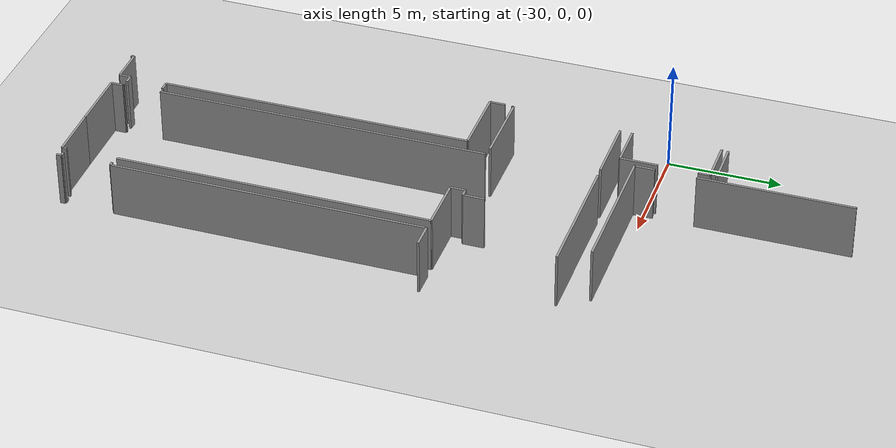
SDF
<sdf version="1.6">
 <world name="default">
  <model name="ground_plane">
   <static>1</static>
   <link name="link">
    <collision name="collision">
     <geometry><plane><normal>0 0 1</normal><size>100 100</size></plane></geometry>
     <surface><friction><ode><mu>100</mu><mu2>50</mu2></ode></friction></surface>
    </collision>
    <visual name="visual">
     <cast_shadows>0</cast_shadows>
     <geometry><plane><normal>0 0 1</normal><size>100 100</size></plane></geometry>
     <material>
      <script><uri>file://media/materials/scripts/gazebo.material</uri><name>Gazebo/Grey</name></script>
     </material>
    </visual>
   </link>
  </model>
  <model name="0510032194_A_40_1_102">
   <static>1</static>
   <link name="Wall_305">
    <collision name="Wall_305_Collision">
     <geometry><box><size>2.77687379233 0.1 2.5</size></box></geometry>
     <pose>1.38843689617 0 1.25 0 0 0</pose>
    </collision>
    <visual name="Wall_305_Visual">
     <pose>1.38843689617 0 1.25 0 0 0</pose>
     <geometry><box><size>2.77687379233 0.1 2.5</size></box></geometry>
     <material>
      <script><uri>file://media/materials/scripts/gazebo.material</uri><name>Gazebo/Grey</name></script>
      <ambient>1 1 1 1</ambient>
     </material>
    </visual>
    <pose>45.6802349232 -47.6613190278 0 0 0 3.14159265359</pose>
   </link>
   <link name="Wall_306">
    <collision name="Wall_306_Collision">
     <geometry><box><size>0.556035797824 0.1 2.5</size></box></geometry>
     <pose>0.278017898912 0 1.25 0 0 0</pose>
    </collision>
    <visual name="Wall_306_Visual">
     <pose>0.278017898912 0 1.25 0 0 0</pose>
     <geometry><box><size>0.556035797824 0.1 2.5</size></box></geometry>
     <material>
      <script><uri>file://media/materials/scripts/gazebo.material</uri><name>Gazebo/Grey</name></script>
      <ambient>1 1 1 1</ambient>
     </material>
    </visual>
    <pose>42.9033611309 -47.6613190278 0 0 0 1.57079632679</pose>
   </link>
   <link name="Wall_307">
    <collision name="Wall_307_Collision">
     <geometry><box><size>0.0436031729889 0.1 2.5</size></box></geometry>
     <pose>0.0218015864945 0 1.25 0 0 0</pose>
    </collision>
    <visual name="Wall_307_Visual">
     <pose>0.0218015864945 0 1.25 0 0 0</pose>
     <geometry><box><size>0.0436031729889 0.1 2.5</size></box></geometry>
     <material>
      <script><uri>file://media/materials/scripts/gazebo.material</uri><name>Gazebo/Grey</name></script>
      <ambient>1 1 1 1</ambient>
     </material>
    </visual>
    <pose>42.9033611309 -47.1052832299 0 0 0 3.14159265359</pose>
   </link>
   <link name="Wall_308">
    <collision name="Wall_308_Collision">
     <geometry><box><size>14.8300366114 0.1 2.5</size></box></geometry>
     <pose>7.41501830571 0 1.25 0 0 0</pose>
    </collision>
    <visual name="Wall_308_Visual">
     <pose>7.41501830571 0 1.25 0 0 0</pose>
     <geometry><box><size>14.8300366114 0.1 2.5</size></box></geometry>
     <material>
      <script><uri>file://media/materials/scripts/gazebo.material</uri><name>Gazebo/Grey</name></script>
      <ambient>1 1 1 1</ambient>
     </material>
    </visual>
    <pose>42.8597579579 -45.3678938269 0 0 0 1.57079632679</pose>
   </link>
   <link name="Wall_309">
    <collision name="Wall_309_Collision">
     <geometry><box><size>5.93715041188 0.1 2.5</size></box></geometry>
     <pose>2.96857520594 0 1.25 0 0 0</pose>
    </collision>
    <visual name="Wall_309_Visual">
     <pose>2.96857520594 0 1.25 0 0 0</pose>
     <geometry><box><size>5.93715041188 0.1 2.5</size></box></geometry>
     <material>
      <script><uri>file://media/materials/scripts/gazebo.material</uri><name>Gazebo/Grey</name></script>
      <ambient>1 1 1 1</ambient>
     </material>
    </visual>
    <pose>42.8597579579 -25.6071392251 0 0 0 0.0</pose>
   </link>
   <link name="Wall_313">
    <collision name="Wall_313_Collision">
     <geometry><box><size>0.946303264517 0.1 2.5</size></box></geometry>
     <pose>0.473151632259 0 1.25 0 0 0</pose>
    </collision>
    <visual name="Wall_313_Visual">
     <pose>0.473151632259 0 1.25 0 0 0</pose>
     <geometry><box><size>0.946303264517 0.1 2.5</size></box></geometry>
     <material>
      <script><uri>file://media/materials/scripts/gazebo.material</uri><name>Gazebo/Grey</name></script>
      <ambient>1 1 1 1</ambient>
     </material>
    </visual>
    <pose>45.9571087155 -29.566892098 0 0 0 -1.57079632679</pose>
   </link>
   <link name="Wall_314">
    <collision name="Wall_314_Collision">
     <geometry><box><size>0.342723482152 0.1 2.5</size></box></geometry>
     <pose>0.171361741076 0 1.25 0 0 0</pose>
    </collision>
    <visual name="Wall_314_Visual">
     <pose>0.171361741076 0 1.25 0 0 0</pose>
     <geometry><box><size>0.342723482152 0.1 2.5</size></box></geometry>
     <material>
      <script><uri>file://media/materials/scripts/gazebo.material</uri><name>Gazebo/Grey</name></script>
      <ambient>1 1 1 1</ambient>
     </material>
    </visual>
    <pose>45.9571087155 -30.5131953626 0 0 0 3.14159265359</pose>
   </link>
   <link name="Wall_315">
    <collision name="Wall_315_Collision">
     <geometry><box><size>0.665742906539 0.1 2.5</size></box></geometry>
     <pose>0.33287145327 0 1.25 0 0 0</pose>
    </collision>
    <visual name="Wall_315_Visual">
     <pose>0.33287145327 0 1.25 0 0 0</pose>
     <geometry><box><size>0.665742906539 0.1 2.5</size></box></geometry>
     <material>
      <script><uri>file://media/materials/scripts/gazebo.material</uri><name>Gazebo/Grey</name></script>
      <ambient>1 1 1 1</ambient>
     </material>
    </visual>
    <pose>45.6143852334 -30.5131953626 0 0 0 -1.57079632679</pose>
   </link>
   <link name="Wall_316">
    <collision name="Wall_316_Collision">
     <geometry><box><size>2.45576121224 0.1 2.5</size></box></geometry>
     <pose>1.22788060612 0 1.25 0 0 0</pose>
    </collision>
    <visual name="Wall_316_Visual">
     <pose>1.22788060612 0 1.25 0 0 0</pose>
     <geometry><box><size>2.45576121224 0.1 2.5</size></box></geometry>
     <material>
      <script><uri>file://media/materials/scripts/gazebo.material</uri><name>Gazebo/Grey</name></script>
      <ambient>1 1 1 1</ambient>
     </material>
    </visual>
    <pose>45.6143852334 -31.1789382691 0 0 0 0.0</pose>
   </link>
   <link name="Wall_317">
    <collision name="Wall_317_Collision">
     <geometry><box><size>13.9526339876 0.1 2.5</size></box></geometry>
     <pose>6.9763169938 0 1.25 0 0 0</pose>
    </collision>
    <visual name="Wall_317_Visual">
     <pose>6.9763169938 0 1.25 0 0 0</pose>
     <geometry><box><size>13.9526339876 0.1 2.5</size></box></geometry>
     <material>
      <script><uri>file://media/materials/scripts/gazebo.material</uri><name>Gazebo/Grey</name></script>
      <ambient>1 1 1 1</ambient>
     </material>
    </visual>
    <pose>48.0701464456 -31.1789382691 0 0 0 -1.57079632679</pose>
   </link>
   <link name="Wall_318">
    <collision name="Wall_318_Collision">
     <geometry><box><size>0.208863012306 0.1 2.5</size></box></geometry>
     <pose>0.104431506153 0 1.25 0 0 0</pose>
    </collision>
    <visual name="Wall_318_Visual">
     <pose>0.104431506153 0 1.25 0 0 0</pose>
     <geometry><box><size>0.208863012306 0.1 2.5</size></box></geometry>
     <material>
      <script><uri>file://media/materials/scripts/gazebo.material</uri><name>Gazebo/Grey</name></script>
      <ambient>1 1 1 1</ambient>
     </material>
    </visual>
    <pose>48.0701464456 -47.4309722363 0 0 0 -1.57079632679</pose>
   </link>
   <link name="Wall_319">
    <collision name="Wall_319_Collision">
     <geometry><box><size>2.3900080832 0.1 2.5</size></box></geometry>
     <pose>1.1950040416 0 1.25 0 0 0</pose>
    </collision>
    <visual name="Wall_319_Visual">
     <pose>1.1950040416 0 1.25 0 0 0</pose>
     <geometry><box><size>2.3900080832 0.1 2.5</size></box></geometry>
     <material>
      <script><uri>file://media/materials/scripts/gazebo.material</uri><name>Gazebo/Grey</name></script>
      <ambient>1 1 1 1</ambient>
     </material>
    </visual>
    <pose>48.0701464456 -47.6398352487 0 0 0 -3.13260353402</pose>
   </link>
   <link name="Wall_320">
    <collision name="Wall_320_Collision">
     <geometry><box><size>0.228821315977 0.1 2.5</size></box></geometry>
     <pose>0.114410657988 0 1.25 0 0 0</pose>
    </collision>
    <visual name="Wall_320_Visual">
     <pose>0.114410657988 0 1.25 0 0 0</pose>
     <geometry><box><size>0.228821315977 0.1 2.5</size></box></geometry>
     <material>
      <script><uri>file://media/materials/scripts/gazebo.material</uri><name>Gazebo/Grey</name></script>
      <ambient>1 1 1 1</ambient>
     </material>
    </visual>
    <pose>48.6040628496 -47.6613190278 0 0 0 1.57079632679</pose>
   </link>
   <link name="Wall_321">
    <collision name="Wall_321_Collision">
     <geometry><box><size>0.190684429981 0.1 2.5</size></box></geometry>
     <pose>0.0953422149903 0 1.25 0 0 0</pose>
    </collision>
    <visual name="Wall_321_Visual">
     <pose>0.0953422149903 0 1.25 0 0 0</pose>
     <geometry><box><size>0.190684429981 0.1 2.5</size></box></geometry>
     <material>
      <script><uri>file://media/materials/scripts/gazebo.material</uri><name>Gazebo/Grey</name></script>
      <ambient>1 1 1 1</ambient>
     </material>
    </visual>
    <pose>48.6040628496 -47.4324977118 0 0 0 3.14159265359</pose>
   </link>
   <link name="Wall_322">
    <collision name="Wall_322_Collision">
     <geometry><box><size>0.191828536561 0.1 2.5</size></box></geometry>
     <pose>0.0959142682803 0 1.25 0 0 0</pose>
    </collision>
    <visual name="Wall_322_Visual">
     <pose>0.0959142682803 0 1.25 0 0 0</pose>
     <geometry><box><size>0.191828536561 0.1 2.5</size></box></geometry>
     <material>
      <script><uri>file://media/materials/scripts/gazebo.material</uri><name>Gazebo/Grey</name></script>
      <ambient>1 1 1 1</ambient>
     </material>
    </visual>
    <pose>48.4133784196 -45.1918285366 0 0 0 0.0</pose>
   </link>
   <link name="Wall_323">
    <collision name="Wall_323_Collision">
     <geometry><box><size>13.9968727753 0.1 2.5</size></box></geometry>
     <pose>6.99843638767 0 1.25 0 0 0</pose>
    </collision>
    <visual name="Wall_323_Visual">
     <pose>6.99843638767 0 1.25 0 0 0</pose>
     <geometry><box><size>13.9968727753 0.1 2.5</size></box></geometry>
     <material>
      <script><uri>file://media/materials/scripts/gazebo.material</uri><name>Gazebo/Grey</name></script>
      <ambient>1 1 1 1</ambient>
     </material>
    </visual>
    <pose>48.6052069562 -45.1918285366 0 0 0 1.57079632679</pose>
   </link>
   <link name="Wall_324">
    <collision name="Wall_324_Collision">
     <geometry><box><size>1.0721549883 0.1 2.5</size></box></geometry>
     <pose>0.536077494152 0 1.25 0 0 0</pose>
    </collision>
    <visual name="Wall_324_Visual">
     <pose>0.536077494152 0 1.25 0 0 0</pose>
     <geometry><box><size>1.0721549883 0.1 2.5</size></box></geometry>
     <material>
      <script><uri>file://media/materials/scripts/gazebo.material</uri><name>Gazebo/Grey</name></script>
      <ambient>1 1 1 1</ambient>
     </material>
    </visual>
    <pose>48.6052069562 -31.1949557612 0 0 0 0.0</pose>
   </link>
   <link name="Wall_334">
    <collision name="Wall_334_Collision">
     <geometry><box><size>0.685192718397 0.1 2.5</size></box></geometry>
     <pose>0.342596359199 0 1.25 0 0 0</pose>
    </collision>
    <visual name="Wall_334_Visual">
     <pose>0.342596359199 0 1.25 0 0 0</pose>
     <geometry><box><size>0.685192718397 0.1 2.5</size></box></geometry>
     <material>
      <script><uri>file://media/materials/scripts/gazebo.material</uri><name>Gazebo/Grey</name></script>
      <ambient>1 1 1 1</ambient>
     </material>
    </visual>
    <pose>39.0802654327 -30.865961558 0 0 0 -1.57079632679</pose>
   </link>
   <link name="Wall_335">
    <collision name="Wall_335_Collision">
     <geometry><box><size>3.11552933998 0.1 2.5</size></box></geometry>
     <pose>1.55776466999 0 1.25 0 0 0</pose>
    </collision>
    <visual name="Wall_335_Visual">
     <pose>1.55776466999 0 1.25 0 0 0</pose>
     <geometry><box><size>3.11552933998 0.1 2.5</size></box></geometry>
     <material>
      <script><uri>file://media/materials/scripts/gazebo.material</uri><name>Gazebo/Grey</name></script>
      <ambient>1 1 1 1</ambient>
     </material>
    </visual>
    <pose>39.0802654327 -31.5511542764 0 0 0 0.0</pose>
   </link>
   <link name="Wall_336">
    <collision name="Wall_336_Collision">
     <geometry><box><size>13.8285619852 0.1 2.5</size></box></geometry>
     <pose>6.91428099258 0 1.25 0 0 0</pose>
    </collision>
    <visual name="Wall_336_Visual">
     <pose>6.91428099258 0 1.25 0 0 0</pose>
     <geometry><box><size>13.8285619852 0.1 2.5</size></box></geometry>
     <material>
      <script><uri>file://media/materials/scripts/gazebo.material</uri><name>Gazebo/Grey</name></script>
      <ambient>1 1 1 1</ambient>
     </material>
    </visual>
    <pose>42.1957947727 -31.5511542764 0 0 0 -1.57079632679</pose>
   </link>
   <link name="Wall_337">
    <collision name="Wall_337_Collision">
     <geometry><box><size>0.39586087664 0.1 2.5</size></box></geometry>
     <pose>0.19793043832 0 1.25 0 0 0</pose>
    </collision>
    <visual name="Wall_337_Visual">
     <pose>0.19793043832 0 1.25 0 0 0</pose>
     <geometry><box><size>0.39586087664 0.1 2.5</size></box></geometry>
     <material>
      <script><uri>file://media/materials/scripts/gazebo.material</uri><name>Gazebo/Grey</name></script>
      <ambient>1 1 1 1</ambient>
     </material>
    </visual>
    <pose>42.1957947727 -45.3797162616 0 0 0 0.0</pose>
   </link>
   <link name="Wall_338">
    <collision name="Wall_338_Collision">
     <geometry><box><size>0.378826400895 0.1 2.5</size></box></geometry>
     <pose>0.189413200447 0 1.25 0 0 0</pose>
    </collision>
    <visual name="Wall_338_Visual">
     <pose>0.189413200447 0 1.25 0 0 0</pose>
     <geometry><box><size>0.378826400895 0.1 2.5</size></box></geometry>
     <material>
      <script><uri>file://media/materials/scripts/gazebo.material</uri><name>Gazebo/Grey</name></script>
      <ambient>1 1 1 1</ambient>
     </material>
    </visual>
    <pose>42.5916556493 -47.061680057 0 0 0 3.14159265359</pose>
   </link>
   <link name="Wall_339">
    <collision name="Wall_339_Collision">
     <geometry><box><size>0.499847452456 0.1 2.5</size></box></geometry>
     <pose>0.249923726228 0 1.25 0 0 0</pose>
    </collision>
    <visual name="Wall_339_Visual">
     <pose>0.249923726228 0 1.25 0 0 0</pose>
     <geometry><box><size>0.499847452456 0.1 2.5</size></box></geometry>
     <material>
      <script><uri>file://media/materials/scripts/gazebo.material</uri><name>Gazebo/Grey</name></script>
      <ambient>1 1 1 1</ambient>
     </material>
    </visual>
    <pose>42.2128292484 -47.061680057 0 0 0 -1.57079632679</pose>
   </link>
   <link name="Wall_340">
    <collision name="Wall_340_Collision">
     <geometry><box><size>1.56132411268 0.1 2.5</size></box></geometry>
     <pose>0.780662056341 0 1.25 0 0 0</pose>
    </collision>
    <visual name="Wall_340_Visual">
     <pose>0.780662056341 0 1.25 0 0 0</pose>
     <geometry><box><size>1.56132411268 0.1 2.5</size></box></geometry>
     <material>
      <script><uri>file://media/materials/scripts/gazebo.material</uri><name>Gazebo/Grey</name></script>
      <ambient>1 1 1 1</ambient>
     </material>
    </visual>
    <pose>42.2128292484 -47.5615275094 0 0 0 3.14159265359</pose>
   </link>
   <link name="Wall_341">
    <collision name="Wall_341_Collision">
     <geometry><box><size>0.138691142073 0.1 2.5</size></box></geometry>
     <pose>0.0693455710363 0 1.25 0 0 0</pose>
    </collision>
    <visual name="Wall_341_Visual">
     <pose>0.0693455710363 0 1.25 0 0 0</pose>
     <geometry><box><size>0.138691142073 0.1 2.5</size></box></geometry>
     <material>
      <script><uri>file://media/materials/scripts/gazebo.material</uri><name>Gazebo/Grey</name></script>
      <ambient>1 1 1 1</ambient>
     </material>
    </visual>
    <pose>40.6515051358 -47.5615275094 0 0 0 -1.57079632679</pose>
   </link>
   <link name="Wall_355">
    <collision name="Wall_355_Collision">
     <geometry><box><size>1.94167598902 0.1 2.5</size></box></geometry>
     <pose>0.970837994508 0 1.25 0 0 0</pose>
    </collision>
    <visual name="Wall_355_Visual">
     <pose>0.970837994508 0 1.25 0 0 0</pose>
     <geometry><box><size>1.94167598902 0.1 2.5</size></box></geometry>
     <material>
      <script><uri>file://media/materials/scripts/gazebo.material</uri><name>Gazebo/Grey</name></script>
      <ambient>1 1 1 1</ambient>
     </material>
    </visual>
    <pose>39.4248957592 -21.1758873182 0 0 0 0.0</pose>
   </link>
   <link name="Wall_356">
    <collision name="Wall_356_Collision">
     <geometry><box><size>0.519043018407 0.1 2.5</size></box></geometry>
     <pose>0.259521509204 0 1.25 0 0 0</pose>
    </collision>
    <visual name="Wall_356_Visual">
     <pose>0.259521509204 0 1.25 0 0 0</pose>
     <geometry><box><size>0.519043018407 0.1 2.5</size></box></geometry>
     <material>
      <script><uri>file://media/materials/scripts/gazebo.material</uri><name>Gazebo/Grey</name></script>
      <ambient>1 1 1 1</ambient>
     </material>
    </visual>
    <pose>41.3665717482 -21.1758873182 0 0 0 -1.57079632679</pose>
   </link>
   <link name="Wall_357">
    <collision name="Wall_357_Collision">
     <geometry><box><size>1.65463236042 0.1 2.5</size></box></geometry>
     <pose>0.82731618021 0 1.25 0 0 0</pose>
    </collision>
    <visual name="Wall_357_Visual">
     <pose>0.82731618021 0 1.25 0 0 0</pose>
     <geometry><box><size>1.65463236042 0.1 2.5</size></box></geometry>
     <material>
      <script><uri>file://media/materials/scripts/gazebo.material</uri><name>Gazebo/Grey</name></script>
      <ambient>1 1 1 1</ambient>
     </material>
    </visual>
    <pose>41.3665717482 -23.4252008543 0 0 0 -1.57079632679</pose>
   </link>
   <link name="Wall_358">
    <collision name="Wall_358_Collision">
     <geometry><box><size>1.93404861182 0.1 2.5</size></box></geometry>
     <pose>0.967024305909 0 1.25 0 0 0</pose>
    </collision>
    <visual name="Wall_358_Visual">
     <pose>0.967024305909 0 1.25 0 0 0</pose>
     <geometry><box><size>1.93404861182 0.1 2.5</size></box></geometry>
     <material>
      <script><uri>file://media/materials/scripts/gazebo.material</uri><name>Gazebo/Grey</name></script>
      <ambient>1 1 1 1</ambient>
     </material>
    </visual>
    <pose>41.3665717482 -25.0798332147 0 0 0 3.14159265359</pose>
   </link>
   <link name="Wall_363">
    <collision name="Wall_363_Collision">
     <geometry><box><size>1.95375266958 0.1 2.5</size></box></geometry>
     <pose>0.976876334791 0 1.25 0 0 0</pose>
    </collision>
    <visual name="Wall_363_Visual">
     <pose>0.976876334791 0 1.25 0 0 0</pose>
     <geometry><box><size>1.95375266958 0.1 2.5</size></box></geometry>
     <material>
      <script><uri>file://media/materials/scripts/gazebo.material</uri><name>Gazebo/Grey</name></script>
      <ambient>1 1 1 1</ambient>
     </material>
    </visual>
    <pose>41.3978439947 -20.8875724601 0 0 0 3.14159265359</pose>
   </link>
   <link name="Wall_365">
    <collision name="Wall_365_Collision">
     <geometry><box><size>0.895454083189 0.1 2.5</size></box></geometry>
     <pose>0.447727041595 0 1.25 0 0 0</pose>
    </collision>
    <visual name="Wall_365_Visual">
     <pose>0.447727041595 0 1.25 0 0 0</pose>
     <geometry><box><size>0.895454083189 0.1 2.5</size></box></geometry>
     <material>
      <script><uri>file://media/materials/scripts/gazebo.material</uri><name>Gazebo/Grey</name></script>
      <ambient>1 1 1 1</ambient>
     </material>
    </visual>
    <pose>41.718448083 -24.3547238889 0 0 0 1.57079632679</pose>
   </link>
   <link name="Wall_366">
    <collision name="Wall_366_Collision">
     <geometry><box><size>6.78328078918 0.1 2.5</size></box></geometry>
     <pose>3.39164039459 0 1.25 0 0 0</pose>
    </collision>
    <visual name="Wall_366_Visual">
     <pose>3.39164039459 0 1.25 0 0 0</pose>
     <geometry><box><size>6.78328078918 0.1 2.5</size></box></geometry>
     <material>
      <script><uri>file://media/materials/scripts/gazebo.material</uri><name>Gazebo/Grey</name></script>
      <ambient>1 1 1 1</ambient>
     </material>
    </visual>
    <pose>41.718448083 -21.6697599919 0 0 0 1.57079632679</pose>
   </link>
   <link name="Wall_369">
    <collision name="Wall_369_Collision">
     <geometry><box><size>6.31991762433 0.1 2.5</size></box></geometry>
     <pose>3.15995881216 0 1.25 0 0 0</pose>
    </collision>
    <visual name="Wall_369_Visual">
     <pose>3.15995881216 0 1.25 0 0 0</pose>
     <geometry><box><size>6.31991762433 0.1 2.5</size></box></geometry>
     <material>
      <script><uri>file://media/materials/scripts/gazebo.material</uri><name>Gazebo/Grey</name></script>
      <ambient>1 1 1 1</ambient>
     </material>
    </visual>
    <pose>48.0383657073 -24.3547238889 0 0 0 3.14159265359</pose>
   </link>
   <link name="Wall_403">
    <collision name="Wall_403_Collision">
     <geometry><box><size>3.03048408421 0.1 2.5</size></box></geometry>
     <pose>1.5152420421 0 1.25 0 0 0</pose>
    </collision>
    <visual name="Wall_403_Visual">
     <pose>1.5152420421 0 1.25 0 0 0</pose>
     <geometry><box><size>3.03048408421 0.1 2.5</size></box></geometry>
     <material>
      <script><uri>file://media/materials/scripts/gazebo.material</uri><name>Gazebo/Grey</name></script>
      <ambient>1 1 1 1</ambient>
     </material>
    </visual>
    <pose>39.4081155293 -25.6259534221 0 0 0 0.0</pose>
   </link>
   <link name="Wall_404">
    <collision name="Wall_404_Collision">
     <geometry><box><size>3.30684938472 0.1 2.5</size></box></geometry>
     <pose>1.65342469236 0 1.25 0 0 0</pose>
    </collision>
    <visual name="Wall_404_Visual">
     <pose>1.65342469236 0 1.25 0 0 0</pose>
     <geometry><box><size>3.30684938472 0.1 2.5</size></box></geometry>
     <material>
      <script><uri>file://media/materials/scripts/gazebo.material</uri><name>Gazebo/Grey</name></script>
      <ambient>1 1 1 1</ambient>
     </material>
    </visual>
    <pose>42.4385996135 -30.4704820502 0 0 0 3.14159265359</pose>
   </link>
   <link name="Wall_405">
    <collision name="Wall_405_Collision">
     <geometry><box><size>0.0966134445235 0.1 2.5</size></box></geometry>
     <pose>0.0483067222618 0 1.25 0 0 0</pose>
    </collision>
    <visual name="Wall_405_Visual">
     <pose>0.0483067222618 0 1.25 0 0 0</pose>
     <geometry><box><size>0.0966134445235 0.1 2.5</size></box></geometry>
     <material>
      <script><uri>file://media/materials/scripts/gazebo.material</uri><name>Gazebo/Grey</name></script>
      <ambient>1 1 1 1</ambient>
     </material>
    </visual>
    <pose>39.1317502288 -30.4704820502 0 0 0 -1.57079632679</pose>
   </link>
   <pose>-67.7 23.8502186515 0 0 0 0</pose>
  </model>
 </world>
</sdf>
